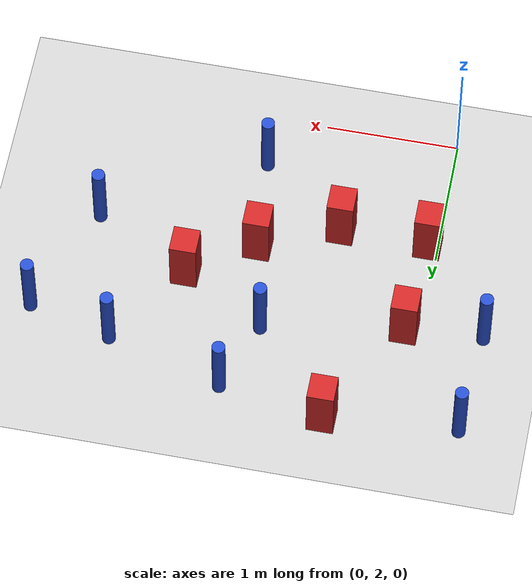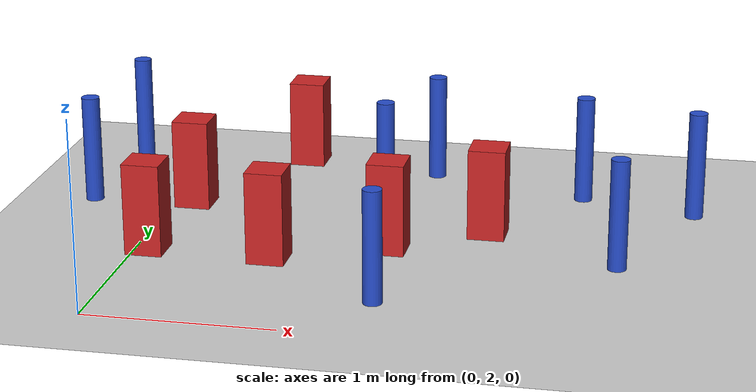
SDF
<sdf version="1.6">
 <world name="default">
  <model name="ground_plane">
   <static>1</static>
   <link name="link">
    <collision name="collision">
     <geometry><plane><normal>0 0 1</normal><size>100 100</size></plane></geometry>
     <surface><friction><ode><mu>100</mu><mu2>50</mu2></ode></friction></surface>
    </collision>
    <visual name="visual">
     <cast_shadows>0</cast_shadows>
     <geometry><plane><normal>0 0 1</normal><size>100 100</size></plane></geometry>
     <material>
      <ambient>1.0 1.0 1.0 1.0</ambient>
      <diffuse>0.8 0.8 0.8 1.0</diffuse>
      <specular>0.01 0.01 0.01 1.000000</specular>
     </material>
    </visual>
   </link>
  </model>
  <model name="pole_obstacle14">
   <static>true</static>
   <pose>2.88527145606 3.95405018933 -9.47619616065e-06 5.49618799738e-07 2.36310414038e-07 -1.55090534814e-07</pose>
   <link name="link">
    <pose>0 0 0.3 0 -0 0</pose>
    <inertial>
     <mass>1</mass>
     <inertia><ixx>0.145833</ixx><ixy>0</ixy><ixz>0</ixz><iyy>0.145833</iyy><iyz>0</iyz><izz>0.125</izz></inertia>
    </inertial>
    <collision name="collision">
     <geometry><cylinder><radius>0.05</radius><length>.6</length></cylinder></geometry>
    </collision>
    <visual name="visual">
     <geometry><cylinder><radius>0.05</radius><length>.6</length></cylinder></geometry>
     <material>
      <script><name>Gazebo/Blue</name><uri>file://media/materials/scripts/gazebo.material</uri></script>
     </material>
    </visual>
   </link>
  </model>
  <model name="pole_obstacle28">
   <static>true</static>
   <pose>1.38512745922 2.41913687791 -9.47619616065e-06 5.49618799737e-07 2.36310414062e-07 -1.55090534798e-07</pose>
   <link name="link">
    <pose>0 0 0.3 0 -0 0</pose>
    <inertial>
     <mass>1</mass>
     <inertia><ixx>0.145833</ixx><ixy>0</ixy><ixz>0</ixz><iyy>0.145833</iyy><iyz>0</iyz><izz>0.125</izz></inertia>
    </inertial>
    <collision name="collision">
     <geometry><cylinder><radius>0.05</radius><length>.6</length></cylinder></geometry>
    </collision>
    <visual name="visual">
     <geometry><cylinder><radius>0.05</radius><length>.6</length></cylinder></geometry>
     <material>
      <script><name>Gazebo/Blue</name><uri>file://media/materials/scripts/gazebo.material</uri></script>
     </material>
    </visual>
   </link>
  </model>
  <model name="pole_obstacle45">
   <static>true</static>
   <pose>2.25597203753 4.11710269118 -9.47619616065e-06 5.49618799738e-07 2.3631041406e-07 -1.55090534801e-07</pose>
   <link name="link">
    <pose>0 0 0.3 0 -0 0</pose>
    <inertial>
     <mass>1</mass>
     <inertia><ixx>0.145833</ixx><ixy>0</ixy><ixz>0</ixz><iyy>0.145833</iyy><iyz>0</iyz><izz>0.125</izz></inertia>
    </inertial>
    <collision name="collision">
     <geometry><cylinder><radius>0.05</radius><length>.6</length></cylinder></geometry>
    </collision>
    <visual name="visual">
     <geometry><cylinder><radius>0.05</radius><length>.6</length></cylinder></geometry>
     <material>
      <script><name>Gazebo/Blue</name><uri>file://media/materials/scripts/gazebo.material</uri></script>
     </material>
    </visual>
   </link>
  </model>
  <model name="square_post_obstacle52">
   <static>true</static>
   <pose>0.0740207557246 2.90392620304 -6.11067671241e-07 -5.50515727128e-06 -8.79689657224e-07 2.37013304536e-05</pose>
   <link name="link">
    <pose>0 0 0.25 0 -0 0</pose>
    <inertial>
     <mass>100</mass>
     <inertia>
      <ixx>0.166667</ixx>
      <ixy>0</ixy>
      <ixz>0</ixz>
      <iyy>0.166667</iyy>
      <iyz>0</iyz>
      <izz>0.166667</izz>
     </inertia>
    </inertial>
    <collision name="collision"><geometry><box><size>.2 .2 .5</size></box></geometry></collision>
    <visual name="visual">
     <geometry><box><size>.2 .2 .5</size></box></geometry>
     <material>
      <script><name>Gazebo/Red</name><uri>file://media/materials/scripts/gazebo.material</uri></script>
     </material>
    </visual>
   </link>
  </model>
  <model name="pole_obstacle88">
   <static>true</static>
   <pose>1.17429539053 3.82498907046 -9.47619616065e-06 5.49618799737e-07 2.36310414062e-07 -1.55090534798e-07</pose>
   <link name="link">
    <pose>0 0 0.3 0 -0 0</pose>
    <inertial>
     <mass>1</mass>
     <inertia><ixx>0.145833</ixx><ixy>0</ixy><ixz>0</ixz><iyy>0.145833</iyy><iyz>0</iyz><izz>0.125</izz></inertia>
    </inertial>
    <collision name="collision">
     <geometry><cylinder><radius>0.05</radius><length>.6</length></cylinder></geometry>
    </collision>
    <visual name="visual">
     <geometry><cylinder><radius>0.05</radius><length>.6</length></cylinder></geometry>
     <material>
      <script><name>Gazebo/Blue</name><uri>file://media/materials/scripts/gazebo.material</uri></script>
     </material>
    </visual>
   </link>
  </model>
  <model name="pole_obstacle119">
   <static>true</static>
   <pose>2.53491660991 3.10041996345 -9.47619616065e-06 5.49618799737e-07 2.36310414051e-07 -1.55090534807e-07</pose>
   <link name="link">
    <pose>0 0 0.3 0 -0 0</pose>
    <inertial>
     <mass>1</mass>
     <inertia><ixx>0.145833</ixx><ixy>0</ixy><ixz>0</ixz><iyy>0.145833</iyy><iyz>0</iyz><izz>0.125</izz></inertia>
    </inertial>
    <collision name="collision">
     <geometry><cylinder><radius>0.05</radius><length>.6</length></cylinder></geometry>
    </collision>
    <visual name="visual">
     <geometry><cylinder><radius>0.05</radius><length>.6</length></cylinder></geometry>
     <material>
      <script><name>Gazebo/Blue</name><uri>file://media/materials/scripts/gazebo.material</uri></script>
     </material>
    </visual>
   </link>
  </model>
  <model name="square_post_obstacle116">
   <static>true</static>
   <pose>1.32067235575 3.14931667792 -6.11067671241e-07 -5.50515727128e-06 -8.79689657224e-07 2.37013304536e-05</pose>
   <link name="link">
    <pose>0 0 0.25 0 -0 0</pose>
    <inertial>
     <mass>100</mass>
     <inertia>
      <ixx>0.166667</ixx>
      <ixy>0</ixy>
      <ixz>0</ixz>
      <iyy>0.166667</iyy>
      <iyz>0</iyz>
      <izz>0.166667</izz>
     </inertia>
    </inertial>
    <collision name="collision"><geometry><box><size>.2 .2 .5</size></box></geometry></collision>
    <visual name="visual">
     <geometry><box><size>.2 .2 .5</size></box></geometry>
     <material>
      <script><name>Gazebo/Red</name><uri>file://media/materials/scripts/gazebo.material</uri></script>
     </material>
    </visual>
   </link>
  </model>
  <model name="square_post_obstacle154">
   <static>true</static>
   <pose>0.122038826333 3.64884651965 -6.11067671241e-07 -5.50515727128e-06 -8.79689657224e-07 2.37013304536e-05</pose>
   <link name="link">
    <pose>0 0 0.25 0 -0 0</pose>
    <inertial>
     <mass>100</mass>
     <inertia>
      <ixx>0.166667</ixx>
      <ixy>0</ixy>
      <ixz>0</ixz>
      <iyy>0.166667</iyy>
      <iyz>0</iyz>
      <izz>0.166667</izz>
     </inertia>
    </inertial>
    <collision name="collision"><geometry><box><size>.2 .2 .5</size></box></geometry></collision>
    <visual name="visual">
     <geometry><box><size>.2 .2 .5</size></box></geometry>
     <material>
      <script><name>Gazebo/Red</name><uri>file://media/materials/scripts/gazebo.material</uri></script>
     </material>
    </visual>
   </link>
  </model>
  <model name="pole_obstacle168">
   <static>true</static>
   <pose>-0.411372506225 4.40053298909 -9.47619616065e-06 5.49618799737e-07 2.36310414065e-07 -1.55090534796e-07</pose>
   <link name="link">
    <pose>0 0 0.3 0 -0 0</pose>
    <inertial>
     <mass>1</mass>
     <inertia><ixx>0.145833</ixx><ixy>0</ixy><ixz>0</ixz><iyy>0.145833</iyy><iyz>0</iyz><izz>0.125</izz></inertia>
    </inertial>
    <collision name="collision">
     <geometry><cylinder><radius>0.05</radius><length>.6</length></cylinder></geometry>
    </collision>
    <visual name="visual">
     <geometry><cylinder><radius>0.05</radius><length>.6</length></cylinder></geometry>
     <material>
      <script><name>Gazebo/Blue</name><uri>file://media/materials/scripts/gazebo.material</uri></script>
     </material>
    </visual>
   </link>
  </model>
  <model name="pole_obstacle173">
   <static>true</static>
   <pose>-0.462500453812 3.60466164947 -9.47619616065e-06 5.49618799737e-07 2.36310414073e-07 -1.55090534793e-07</pose>
   <link name="link">
    <pose>0 0 0.3 0 -0 0</pose>
    <inertial>
     <mass>1</mass>
     <inertia><ixx>0.145833</ixx><ixy>0</ixy><ixz>0</ixz><iyy>0.145833</iyy><iyz>0</iyz><izz>0.125</izz></inertia>
    </inertial>
    <collision name="collision">
     <geometry><cylinder><radius>0.05</radius><length>.6</length></cylinder></geometry>
    </collision>
    <visual name="visual">
     <geometry><cylinder><radius>0.05</radius><length>.6</length></cylinder></geometry>
     <material>
      <script><name>Gazebo/Blue</name><uri>file://media/materials/scripts/gazebo.material</uri></script>
     </material>
    </visual>
   </link>
  </model>
  <model name="pole_obstacle185">
   <static>true</static>
   <pose>1.37696077413 4.3644454165 -9.47619616065e-06 5.49618799737e-07 2.36310414061e-07 -1.550905348e-07</pose>
   <link name="link">
    <pose>0 0 0.3 0 -0 0</pose>
    <inertial>
     <mass>1</mass>
     <inertia><ixx>0.145833</ixx><ixy>0</ixy><ixz>0</ixz><iyy>0.145833</iyy><iyz>0</iyz><izz>0.125</izz></inertia>
    </inertial>
    <collision name="collision">
     <geometry><cylinder><radius>0.05</radius><length>.6</length></cylinder></geometry>
    </collision>
    <visual name="visual">
     <geometry><cylinder><radius>0.05</radius><length>.6</length></cylinder></geometry>
     <material>
      <script><name>Gazebo/Blue</name><uri>file://media/materials/scripts/gazebo.material</uri></script>
     </material>
    </visual>
   </link>
  </model>
  <model name="square_post_obstacle174">
   <static>true</static>
   <pose>0.734597796704 2.89701601995 -6.11067671241e-07 -5.50515727128e-06 -8.79689657224e-07 2.37013304536e-05</pose>
   <link name="link">
    <pose>0 0 0.25 0 -0 0</pose>
    <inertial>
     <mass>100</mass>
     <inertia>
      <ixx>0.166667</ixx>
      <ixy>0</ixy>
      <ixz>0</ixz>
      <iyy>0.166667</iyy>
      <iyz>0</iyz>
      <izz>0.166667</izz>
     </inertia>
    </inertial>
    <collision name="collision"><geometry><box><size>.2 .2 .5</size></box></geometry></collision>
    <visual name="visual">
     <geometry><box><size>.2 .2 .5</size></box></geometry>
     <material>
      <script><name>Gazebo/Red</name><uri>file://media/materials/scripts/gazebo.material</uri></script>
     </material>
    </visual>
   </link>
  </model>
  <model name="square_post_obstacle194">
   <static>true</static>
   <pose>1.80724979144 3.47046976835 -6.11067671241e-07 -5.50515727128e-06 -8.79689657224e-07 2.37013304536e-05</pose>
   <link name="link">
    <pose>0 0 0.25 0 -0 0</pose>
    <inertial>
     <mass>100</mass>
     <inertia>
      <ixx>0.166667</ixx>
      <ixy>0</ixy>
      <ixz>0</ixz>
      <iyy>0.166667</iyy>
      <iyz>0</iyz>
      <izz>0.166667</izz>
     </inertia>
    </inertial>
    <collision name="collision"><geometry><box><size>.2 .2 .5</size></box></geometry></collision>
    <visual name="visual">
     <geometry><box><size>.2 .2 .5</size></box></geometry>
     <material>
      <script><name>Gazebo/Red</name><uri>file://media/materials/scripts/gazebo.material</uri></script>
     </material>
    </visual>
   </link>
  </model>
  <model name="square_post_obstacle205">
   <static>true</static>
   <pose>0.587636137258 4.49075638458 -6.11067671241e-07 -5.50515727128e-06 -8.79689657224e-07 2.37013304536e-05</pose>
   <link name="link">
    <pose>0 0 0.25 0 -0 0</pose>
    <inertial>
     <mass>100</mass>
     <inertia>
      <ixx>0.166667</ixx>
      <ixy>0</ixy>
      <ixz>0</ixz>
      <iyy>0.166667</iyy>
      <iyz>0</iyz>
      <izz>0.166667</izz>
     </inertia>
    </inertial>
    <collision name="collision"><geometry><box><size>.2 .2 .5</size></box></geometry></collision>
    <visual name="visual">
     <geometry><box><size>.2 .2 .5</size></box></geometry>
     <material>
      <script><name>Gazebo/Red</name><uri>file://media/materials/scripts/gazebo.material</uri></script>
     </material>
    </visual>
   </link>
  </model>
 </world>
</sdf>
